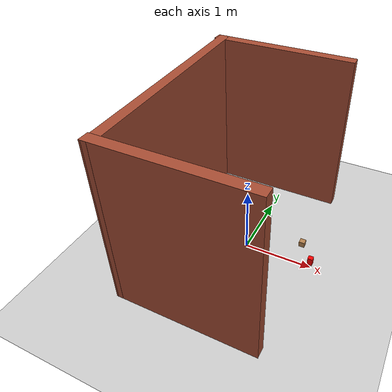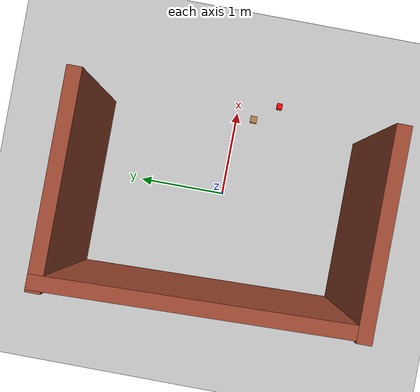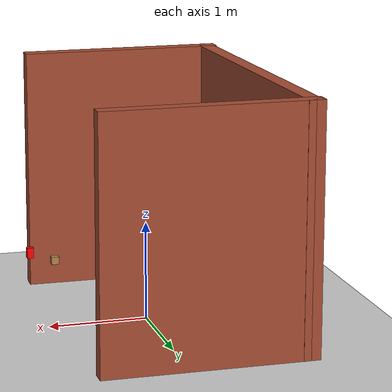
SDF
<sdf version="1.7">
 <world name="default">
  <light name="sun" type="directional">
   <pose>0 0 10 0 -0 0</pose>
   <diffuse>0.8 0.8 0.8 1</diffuse>
   <specular>0.2 0.2 0.2 1</specular>
   <attenuation>
    <range>1000</range>
    <constant>0.9</constant>
    <linear>0.01</linear>
    <quadratic>0.001</quadratic>
   </attenuation>
   <direction>-0.5 0.1 -0.9</direction>
   <spot><inner_angle>0</inner_angle><outer_angle>0</outer_angle><falloff>0</falloff></spot>
  </light>
  <model name="ground_plane">
   <static>1</static>
   <link name="link">
    <collision name="collision">
     <geometry><plane><normal>0 0 1</normal><size>100 100</size></plane></geometry>
     <surface>
      <contact><collide_bitmask>65535</collide_bitmask></contact>
      <friction><ode><mu>100</mu><mu2>50</mu2></ode></friction>
     </surface>
    </collision>
    <visual name="visual">
     <cast_shadows>0</cast_shadows>
     <geometry><plane><normal>0 0 1</normal><size>100 100</size></plane></geometry>
     <material>
      <script><uri>file://media/materials/scripts/gazebo.material</uri><name>Gazebo/Grey</name></script>
     </material>
    </visual>
   </link>
  </model>
  <gravity>0 0 -9.8</gravity>
  <magnetic_field>6e-06 2.3e-05 -4.2e-05</magnetic_field>
  <atmosphere type="adiabatic"/>
  <physics type="ode">
   <max_step_size>0.001</max_step_size>
   <real_time_factor>1</real_time_factor>
   <real_time_update_rate>1000</real_time_update_rate>
  </physics>
  <scene><ambient>0.4 0.4 0.4 1</ambient><background>0.7 0.7 0.7 1</background><shadows>1</shadows></scene>
  <spherical_coordinates>
   <surface_model>EARTH_WGS84</surface_model>
   <latitude_deg>0</latitude_deg>
   <longitude_deg>0</longitude_deg>
   <elevation>0</elevation>
   <heading_deg>0</heading_deg>
  </spherical_coordinates>
  <model name="pick_and_place">
   <pose>-0.185974 0.013732 0 0 -0 0</pose>
   <link name="Wall_4">
    <collision name="Wall_4_Collision">
     <geometry><box><size>2.07034 0.15 2.5</size></box></geometry>
     <pose>0 0 1.25 0 -0 0</pose>
    </collision>
    <visual name="Wall_4_Visual">
     <pose>0 0 1.25 0 -0 0</pose>
     <geometry><box><size>2.07034 0.15 2.5</size></box></geometry>
     <material>
      <script><uri>file://media/materials/scripts/gazebo.material</uri><name>Gazebo/Bricks</name></script>
      <ambient>1 1 1 1</ambient>
     </material>
     <meta><layer>0</layer></meta>
    </visual>
    <pose>0.046261 -1.55 0 0 -0 3.14159</pose>
   </link>
   <link name="Wall_5">
    <collision name="Wall_5_Collision">
     <geometry><box><size>3.25138 0.15 2.5</size></box></geometry>
     <pose>0 0 1.25 0 -0 0</pose>
    </collision>
    <visual name="Wall_5_Visual">
     <pose>0 0 1.25 0 -0 0</pose>
     <geometry><box><size>3.25138 0.15 2.5</size></box></geometry>
     <material>
      <script><uri>file://media/materials/scripts/gazebo.material</uri><name>Gazebo/Bricks</name></script>
      <ambient>1 1 1 1</ambient>
     </material>
     <meta><layer>0</layer></meta>
    </visual>
    <pose>-0.937039 -0 0 0 -0 1.60063</pose>
   </link>
   <link name="Wall_6">
    <collision name="Wall_6_Collision">
     <geometry><box><size>2.13973 0.15 2.5</size></box></geometry>
     <pose>0 0 1.25 0 -0 0</pose>
    </collision>
    <visual name="Wall_6_Visual">
     <pose>0 0 1.25 0 -0 0</pose>
     <geometry><box><size>2.13973 0.15 2.5</size></box></geometry>
     <material>
      <script><uri>file://media/materials/scripts/gazebo.material</uri><name>Gazebo/Bricks</name></script>
      <ambient>1 1 1 1</ambient>
     </material>
     <meta><layer>0</layer></meta>
    </visual>
    <pose>-0.011565 1.55 0 0 -0 0</pose>
   </link>
   <static>1</static>
  </model>
  <model name="unit_box_red">
   <link name="link">
    <inertial>
     <mass>0.01</mass>
     <inertia>
      <ixx>0.166667</ixx>
      <ixy>0</ixy>
      <ixz>0</ixz>
      <iyy>0.166667</iyy>
      <iyz>0</iyz>
      <izz>0.166667</izz>
     </inertia>
    </inertial>
    <visual name="visual">
     <geometry><box><size>0.06393 0.060568 0.106279</size></box></geometry>
     <material>
      <script><name>Gazebo/Grey</name><uri>file://media/materials/scripts/gazebo.material</uri></script>
      <shader type="pixel"><normal_map>__default__</normal_map></shader>
      <ambient>1 0 0 0</ambient>
      <diffuse>0.7 0.7 0.7 1</diffuse>
      <specular>0.01 0.01 0.01 1</specular>
      <emissive>0 0 0 1</emissive>
     </material>
    </visual>
    <collision name="collision">
     <geometry><box><size>0.06393 0.060568 0.106279</size></box></geometry>
     <surface>
      <friction>
       <ode><mu>10</mu><mu2>10</mu2><fdir1>0 0 0</fdir1><slip1>0</slip1><slip2>0</slip2></ode>
       <torsional>
        <coefficient>1</coefficient>
        <patch_radius>0</patch_radius>
        <surface_radius>0</surface_radius>
        <use_patch_radius>1</use_patch_radius>
        <ode><slip>0</slip></ode>
       </torsional>
      </friction>
      <bounce><restitution_coefficient>0</restitution_coefficient><threshold>1e+06</threshold></bounce>
      <contact>
       <collide_without_contact>0</collide_without_contact>
       <collide_without_contact_bitmask>1</collide_without_contact_bitmask>
       <collide_bitmask>1</collide_bitmask>
       <ode>
        <soft_cfm>0</soft_cfm>
        <soft_erp>0.2</soft_erp>
        <kp>1e+13</kp>
        <kd>1</kd>
        <max_vel>0.01</max_vel>
        <min_depth>0</min_depth>
       </ode>
       <bullet>
        <split_impulse>1</split_impulse>
        <split_impulse_penetration_threshold>-0.01</split_impulse_penetration_threshold>
        <soft_cfm>0</soft_cfm>
        <soft_erp>0.2</soft_erp>
        <kp>1e+13</kp>
        <kd>1</kd>
       </bullet>
      </contact>
     </surface>
    </collision>
   </link>
   <static>0</static>
   <pose>1.09124 -0.458455 0.650977 7e-06 -0 -9.8e-05</pose>
  </model>
  <model name="wood_cube_7_5cm">
   <link name="link">
    <pose>0 0 0.0375 0 -0 0</pose>
    <inertial>
     <mass>0.2249</mass>
     <inertia>
      <ixx>0.000210844</ixx>
      <ixy>0</ixy>
      <ixz>0</ixz>
      <iyy>0.000210844</iyy>
      <iyz>0</iyz>
      <izz>0.000210844</izz>
     </inertia>
    </inertial>
    <collision name="collision">
     <geometry><box><size>0.075 0.075 0.075</size></box></geometry>
     <surface>
      <contact>
       <poissons_ratio>0.347</poissons_ratio>
       <elastic_modulus>8.8e+09</elastic_modulus>
       <ode><kp>100000</kp><kd>100</kd><max_vel>100</max_vel><min_depth>0.001</min_depth></ode>
      </contact>
      <friction>
       <torsional>
        <coefficient>1</coefficient>
        <use_patch_radius>0</use_patch_radius>
        <surface_radius>0.01</surface_radius>
       </torsional>
      </friction>
     </surface>
    </collision>
    <visual name="visual">
     <geometry><box><size>0.075 0.075 0.075</size></box></geometry>
     <material>
      <script><uri>file://media/materials/scripts/gazebo.material</uri><name>Gazebo/Wood</name></script>
     </material>
    </visual>
   </link>
   <pose>0.892885 -0.193664 0.596843 0 -0 0</pose>
  </model>
  <light name="user_directional_light_0" type="directional">
   <pose>-0.164299 0.664943 1 0 -0 0</pose>
   <diffuse>0.5 0.5 0.5 1</diffuse>
   <specular>0.1 0.1 0.1 1</specular>
   <direction>0.1 0.1 -0.9</direction>
   <attenuation>
    <range>20</range>
    <constant>0.5</constant>
    <linear>0.01</linear>
    <quadratic>0.001</quadratic>
   </attenuation>
  </light>
  <light name="user_directional_light_1" type="directional">
   <pose>-0.240863 0.948526 1 0 -0 0</pose>
   <diffuse>0.5 0.5 0.5 1</diffuse>
   <specular>0.1 0.1 0.1 1</specular>
   <direction>0.1 0.1 -0.9</direction>
   <attenuation>
    <range>20</range>
    <constant>0.5</constant>
    <linear>0.01</linear>
    <quadratic>0.001</quadratic>
   </attenuation>
  </light>
  <light name="user_directional_light_2" type="directional">
   <pose>-0.213021 -0.756563 1 0 -0 0</pose>
   <diffuse>0.5 0.5 0.5 1</diffuse>
   <specular>0.1 0.1 0.1 1</specular>
   <direction>0.1 0.1 -0.9</direction>
   <attenuation>
    <range>20</range>
    <constant>0.5</constant>
    <linear>0.01</linear>
    <quadratic>0.001</quadratic>
   </attenuation>
  </light>
 </world>
</sdf>
